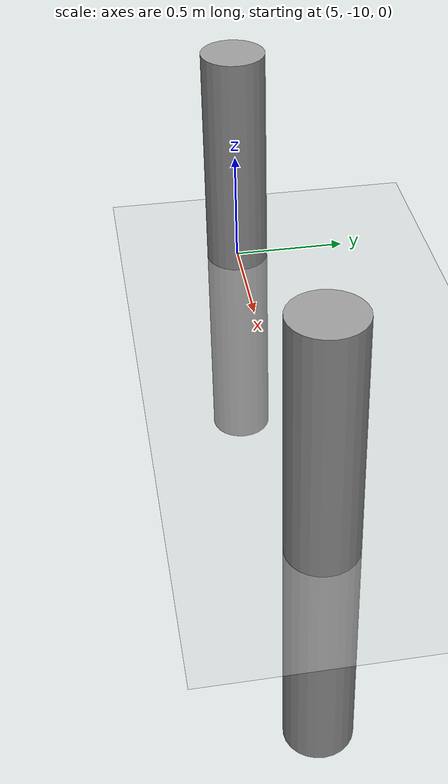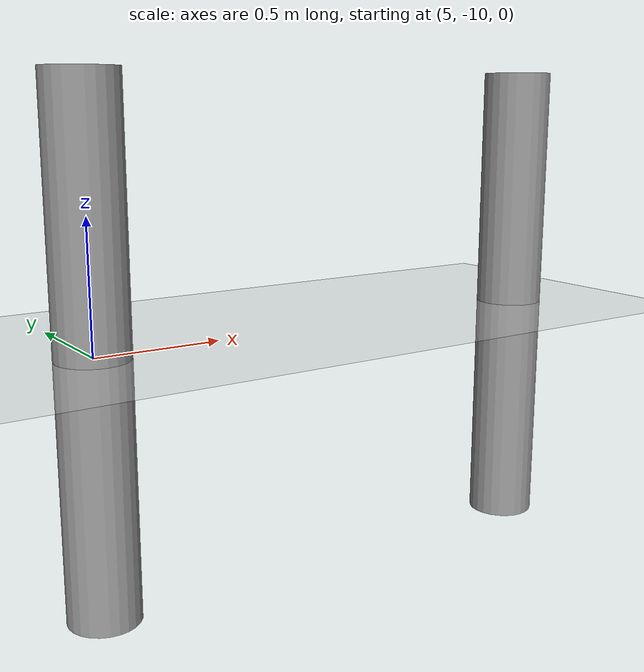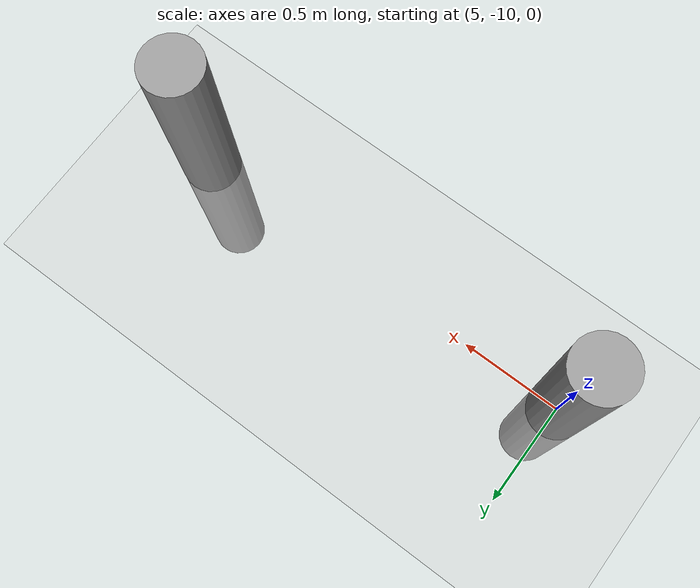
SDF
<sdf version="1.6">
 <world name="default">
  <model name="ground_plane">
   <static>1</static>
   <link name="link">
    <collision name="collision">
     <geometry><plane><normal>0 0 1</normal><size>100 100</size></plane></geometry>
     <surface><friction><ode><mu>100</mu><mu2>50</mu2></ode></friction></surface>
    </collision>
    <visual name="visual">
     <cast_shadows>0</cast_shadows>
     <geometry><plane><normal>0 0 1</normal><size>100 100</size></plane></geometry>
     <material>
      <script><uri>file://media/materials/scripts/gazebo.material</uri><name>Gazebo/Grey</name></script>
     </material>
    </visual>
   </link>
  </model>
  <model name="my_cylinder014_clone_27">
   <pose>7 -10 0 0 -0 0</pose>
   <link name="my_cylinder014::link">
    <inertial>
     <mass>1</mass>
     <inertia><ixx>0.145833</ixx><ixy>0</ixy><ixz>0</ixz><iyy>0.145833</iyy><iyz>0</iyz><izz>0.125</izz></inertia>
    </inertial>
    <visual name="visual">
     <geometry><cylinder><radius>0.14</radius><length>2</length></cylinder></geometry>
     <material>
      <script><name>Gazebo/Grey</name><uri>file://media/materials/scripts/gazebo.material</uri></script>
      <ambient>0.3 0.3 0.3 1</ambient>
      <diffuse>0.7 0.7 0.7 1</diffuse>
      <specular>1 0.01 0.01 1</specular>
      <emissive>0 0 0 1</emissive>
      <shader type="vertex"><normal_map>__default__</normal_map></shader>
     </material>
    </visual>
    <collision name="collision">
     <geometry><cylinder><radius>0.14</radius><length>2</length></cylinder></geometry>
     <surface>
      <friction>
       <ode><mu>1</mu><mu2>1</mu2><fdir1>0 0 0</fdir1><slip1>0</slip1><slip2>0</slip2></ode>
       <torsional>
        <coefficient>1</coefficient>
        <patch_radius>0</patch_radius>
        <surface_radius>0</surface_radius>
        <use_patch_radius>1</use_patch_radius>
        <ode><slip>0</slip></ode>
       </torsional>
      </friction>
      <bounce><restitution_coefficient>0</restitution_coefficient><threshold>1e+06</threshold></bounce>
      <contact>
       <collide_without_contact>0</collide_without_contact>
       <collide_without_contact_bitmask>1</collide_without_contact_bitmask>
       <collide_bitmask>1</collide_bitmask>
       <ode>
        <soft_cfm>0</soft_cfm>
        <soft_erp>0.2</soft_erp>
        <kp>1e+13</kp>
        <kd>1</kd>
        <max_vel>0.01</max_vel>
        <min_depth>0</min_depth>
       </ode>
       <bullet>
        <split_impulse>1</split_impulse>
        <split_impulse_penetration_threshold>-0.01</split_impulse_penetration_threshold>
        <soft_cfm>0</soft_cfm>
        <soft_erp>0.2</soft_erp>
        <kp>1e+13</kp>
        <kd>1</kd>
       </bullet>
      </contact>
     </surface>
    </collision>
   </link>
   <static>1</static>
  </model>
  <model name="my_cylinder014_clone_27">
   <pose>7 -10 0 0 -0 0</pose>
   <link name="my_cylinder014::link">
    <inertial>
     <mass>1</mass>
     <inertia><ixx>0.145833</ixx><ixy>0</ixy><ixz>0</ixz><iyy>0.145833</iyy><iyz>0</iyz><izz>0.125</izz></inertia>
    </inertial>
    <visual name="visual">
     <geometry><cylinder><radius>0.14</radius><length>2</length></cylinder></geometry>
     <material>
      <script><name>Gazebo/Grey</name><uri>file://media/materials/scripts/gazebo.material</uri></script>
      <ambient>0.3 0.3 0.3 1</ambient>
      <diffuse>0.7 0.7 0.7 1</diffuse>
      <specular>1 0.01 0.01 1</specular>
      <emissive>0 0 0 1</emissive>
      <shader type="vertex"><normal_map>__default__</normal_map></shader>
     </material>
    </visual>
    <collision name="collision">
     <geometry><cylinder><radius>0.14</radius><length>2</length></cylinder></geometry>
     <surface>
      <friction>
       <ode><mu>1</mu><mu2>1</mu2><fdir1>0 0 0</fdir1><slip1>0</slip1><slip2>0</slip2></ode>
       <torsional>
        <coefficient>1</coefficient>
        <patch_radius>0</patch_radius>
        <surface_radius>0</surface_radius>
        <use_patch_radius>1</use_patch_radius>
        <ode><slip>0</slip></ode>
       </torsional>
      </friction>
      <bounce><restitution_coefficient>0</restitution_coefficient><threshold>1e+06</threshold></bounce>
      <contact>
       <collide_without_contact>0</collide_without_contact>
       <collide_without_contact_bitmask>1</collide_without_contact_bitmask>
       <collide_bitmask>1</collide_bitmask>
       <ode>
        <soft_cfm>0</soft_cfm>
        <soft_erp>0.2</soft_erp>
        <kp>1e+13</kp>
        <kd>1</kd>
        <max_vel>0.01</max_vel>
        <min_depth>0</min_depth>
       </ode>
       <bullet>
        <split_impulse>1</split_impulse>
        <split_impulse_penetration_threshold>-0.01</split_impulse_penetration_threshold>
        <soft_cfm>0</soft_cfm>
        <soft_erp>0.2</soft_erp>
        <kp>1e+13</kp>
        <kd>1</kd>
       </bullet>
      </contact>
     </surface>
    </collision>
   </link>
   <static>1</static>
  </model>
  <model name="my_cylinder014_clone_26">
   <pose>5 -10 0 0 -0 0</pose>
   <link name="my_cylinder014::link">
    <inertial>
     <mass>1</mass>
     <inertia><ixx>0.145833</ixx><ixy>0</ixy><ixz>0</ixz><iyy>0.145833</iyy><iyz>0</iyz><izz>0.125</izz></inertia>
    </inertial>
    <visual name="visual">
     <geometry><cylinder><radius>0.14</radius><length>2</length></cylinder></geometry>
     <material>
      <script><name>Gazebo/Grey</name><uri>file://media/materials/scripts/gazebo.material</uri></script>
      <ambient>0.3 0.3 0.3 1</ambient>
      <diffuse>0.7 0.7 0.7 1</diffuse>
      <specular>1 0.01 0.01 1</specular>
      <emissive>0 0 0 1</emissive>
      <shader type="vertex"><normal_map>__default__</normal_map></shader>
     </material>
    </visual>
    <collision name="collision">
     <geometry><cylinder><radius>0.14</radius><length>2</length></cylinder></geometry>
     <surface>
      <friction>
       <ode><mu>1</mu><mu2>1</mu2><fdir1>0 0 0</fdir1><slip1>0</slip1><slip2>0</slip2></ode>
       <torsional>
        <coefficient>1</coefficient>
        <patch_radius>0</patch_radius>
        <surface_radius>0</surface_radius>
        <use_patch_radius>1</use_patch_radius>
        <ode><slip>0</slip></ode>
       </torsional>
      </friction>
      <bounce><restitution_coefficient>0</restitution_coefficient><threshold>1e+06</threshold></bounce>
      <contact>
       <collide_without_contact>0</collide_without_contact>
       <collide_without_contact_bitmask>1</collide_without_contact_bitmask>
       <collide_bitmask>1</collide_bitmask>
       <ode>
        <soft_cfm>0</soft_cfm>
        <soft_erp>0.2</soft_erp>
        <kp>1e+13</kp>
        <kd>1</kd>
        <max_vel>0.01</max_vel>
        <min_depth>0</min_depth>
       </ode>
       <bullet>
        <split_impulse>1</split_impulse>
        <split_impulse_penetration_threshold>-0.01</split_impulse_penetration_threshold>
        <soft_cfm>0</soft_cfm>
        <soft_erp>0.2</soft_erp>
        <kp>1e+13</kp>
        <kd>1</kd>
       </bullet>
      </contact>
     </surface>
    </collision>
   </link>
   <static>1</static>
  </model>
 </world>
</sdf>
